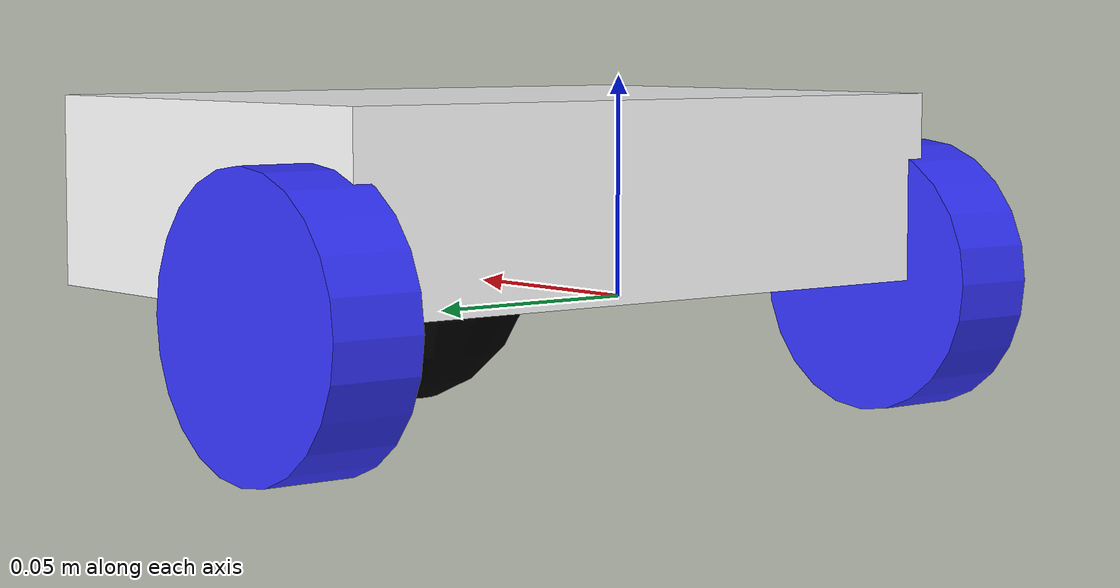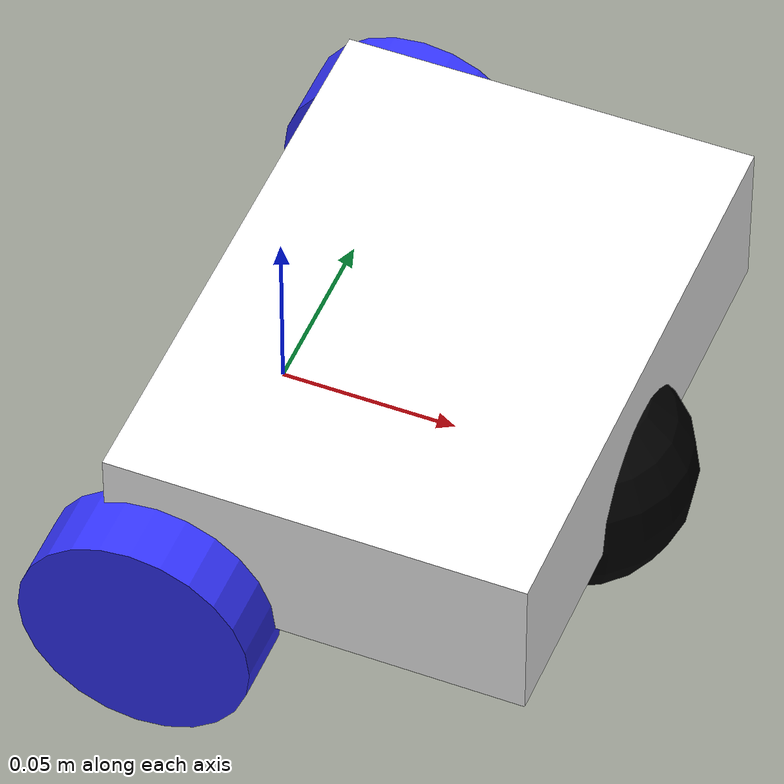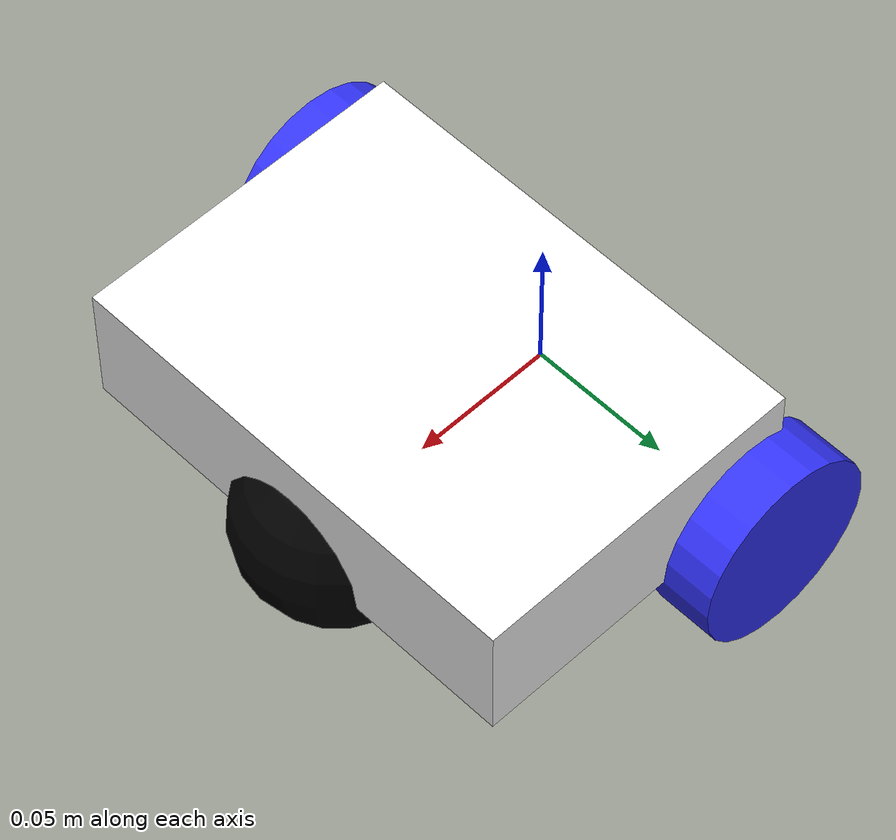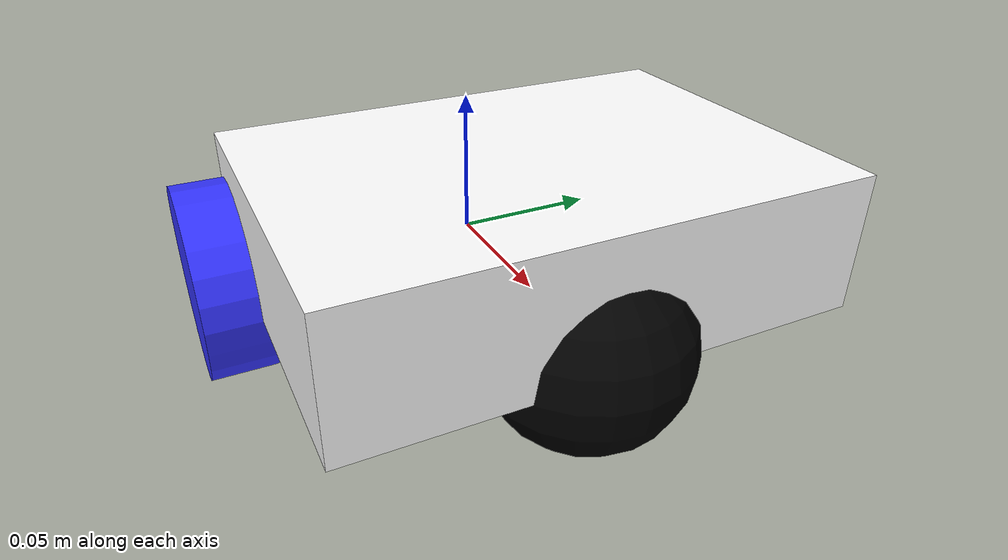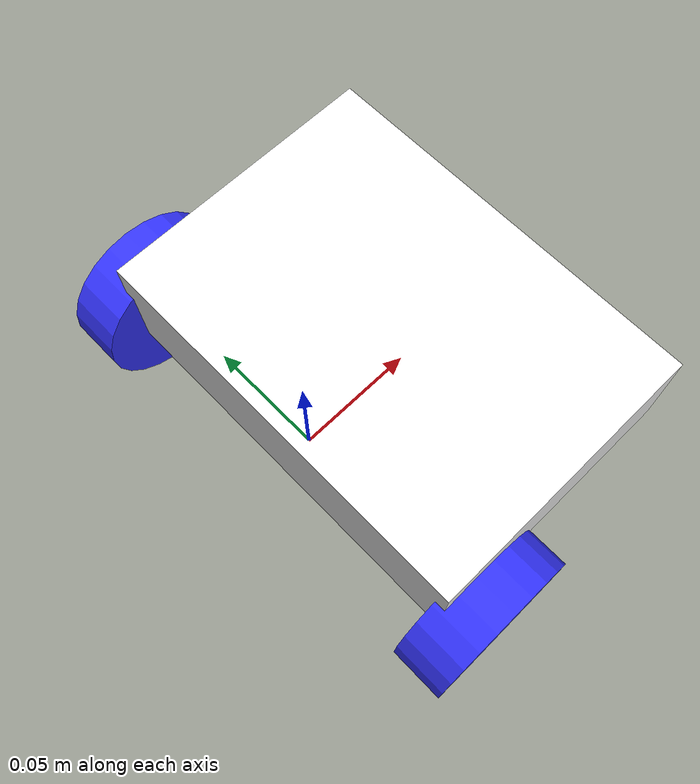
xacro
<?xml version="1.0"?>
<robot xmlns:xacro="http://www.ros.org/wiki/xacro">

<material name="white">
<color rgba="1.0 1.0 1.0 1.0"/>
</material>

<material name="orange">
<color rgba="1.0 0.3 0.1 1.0"/>
</material>

<material name="blue">
<color rgba="0.2 0.2 1.0 1.0"/>
</material>

<material name="black">
<color rgba="0.0 0.0 0.0 1.0"/>
</material>

<material name="red">
<color rgba="1.0 0.0 0.0 1.0"/>
</material>

<xacro:include filename="inertial_macros.xacro"/>

<link name="base_link">

</link>

<joint name="chassis_joint" type="fixed">
    <parent link="base_link"/>
    <child link="chassis"/>
    <origin xyz="-0.015 0.0 0.00"/>
</joint>

<link name="chassis">
    <visual>
    <origin xyz="0.059 0.0 0.0225"/>
        <geometry>
            <box size="0.118 0.167 0.045"/>
        </geometry>
        <material name="white"/>
    </visual>

    <collision>
        <origin xyz="0.059 0.0 0.0225"/>
        <geometry>
            <box size="0.118 0.167 0.045"/>
        </geometry>
    </collision>
    <xacro:inertial_box mass="0.3" x="0.118" y="0.167" z="0.045">
        <origin xyz="0.059 0.0 0.0225" rpy="0.0 0.0 0.0"/>
    </xacro:inertial_box>
    <gazebo reference="chassis">
        <material>Gazebo/white </material>
    </gazebo>
</link>

<!-- Left_wheel_link -->
<joint name="left_wheel_joint" type="continuous">
    <parent link="base_link"/>
    <child link="left_wheel"/>
    <origin xyz="0.0 0.090 0.0" rpy="-${pi/2} 0.0 0.0"/>
    <axis xyz="0.0 0.0 1.0"/>
</joint>

<gazebo reference="chassis">
    <material>Gazebo/White </material>
</gazebo>

<link name="left_wheel">
    <visual>
        <geometry>
            <cylinder radius="0.033" length="0.022"/>
        </geometry>
        <material name="blue"/>
    </visual>
    <collision>
        <geometry>
            <cylinder radius="0.033" length="0.022"/>
        </geometry>
    </collision>

    <xacro:inertial_cylinder mass="0.1" radius="0.033" length="0.022">
        <origin xyz="0.0 0.0 0.0" rpy="0.0 0.0 0.0"/>
    </xacro:inertial_cylinder>

</link>
<gazebo reference="left_wheel">
    <material>Gazebo/Blue </material>
</gazebo>

<!-- Right_wheel_link -->
<joint name="right_wheel_joint" type="continuous">
    <parent link="base_link"/>
    <child link="right_wheel"/>
    <origin xyz="0.0 -0.090 0.0" rpy="${pi/2} 0.0 0.0"/>
    <axis xyz="0.0 0.0 -1.0"/>
</joint>

<link name="right_wheel">
    <visual>
        <geometry>
            <cylinder radius="0.033" length="0.022"/>
        </geometry>
        <material name="blue"/>
    </visual>
    <collision>
        <geometry>
            <cylinder radius="0.033" length="0.022"/>
        </geometry>
    </collision>

    <xacro:inertial_cylinder mass="0.1" radius="0.033" length="0.022">
        <origin xyz="0.0 0.0 0.0" rpy="0.0 0.0 0.0"/>
    </xacro:inertial_cylinder>

</link>

<gazebo reference="right_wheel">
    <material>Gazebo/Blue </material>
</gazebo>

<joint name="caster_wheel_joint" type="fixed">
    <origin xyz="0.1 0.0 0.0" />
    <parent link="chassis"/>
    <child link="caster_wheel"/>
</joint>

<link name="caster_wheel">
    <visual>
        <geometry>
            <sphere radius="0.033"/>
        </geometry>
        <material name="black"/>
    </visual>
    <collision>
        <geometry>
            <sphere radius="0.033"/>
        </geometry>
    </collision>
    <xacro:inertial_sphere mass="0.1" radius="0.033">
        <origin xyz="0.0 0.0 0.0" rpy="0.0 0.0 0.0"/>
    </xacro:inertial_sphere>
</link>

<gazebo reference="caster_wheel">
    <material>Gazebo/Black </material>
    <mu1 value="0.001"/>
    <mu2 value="0.001"/>
</gazebo>
</robot>
